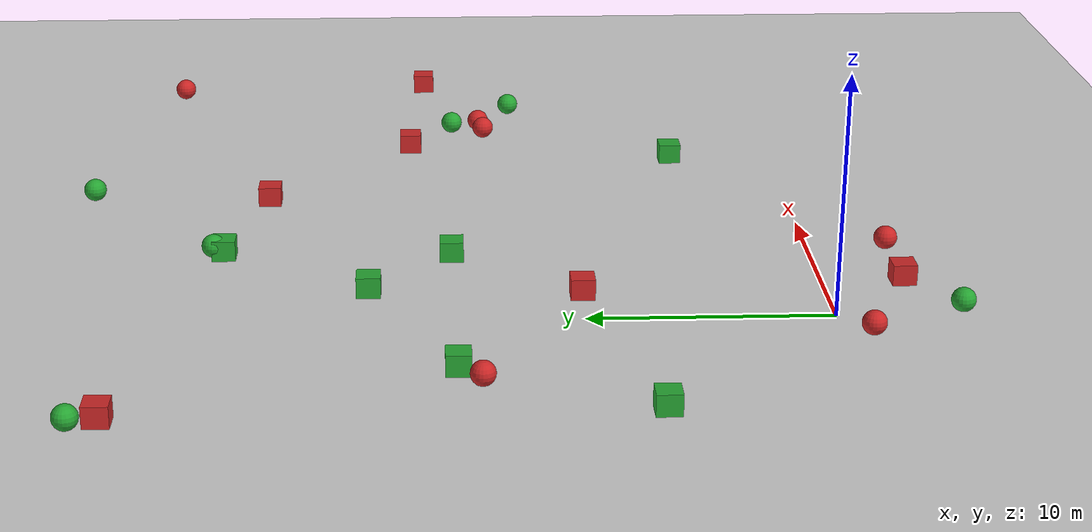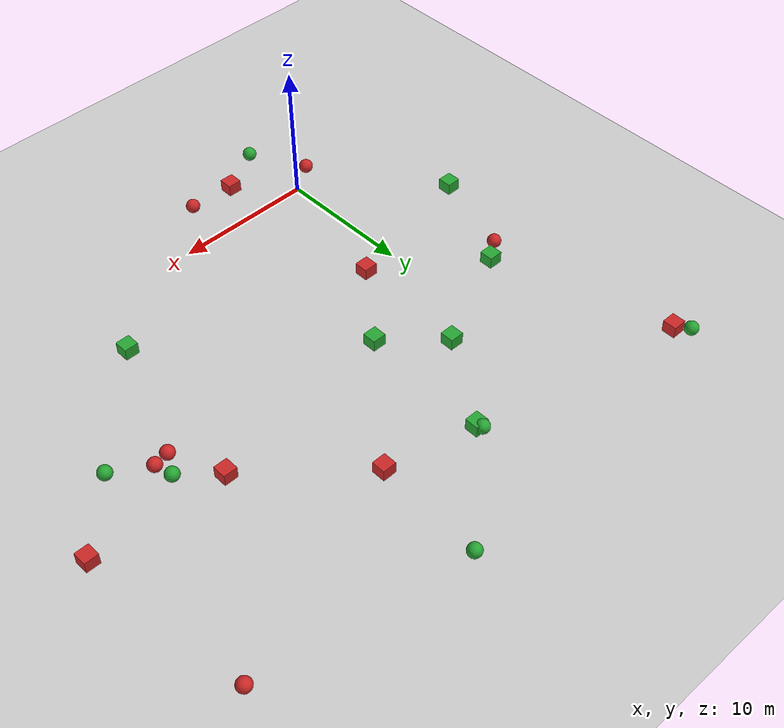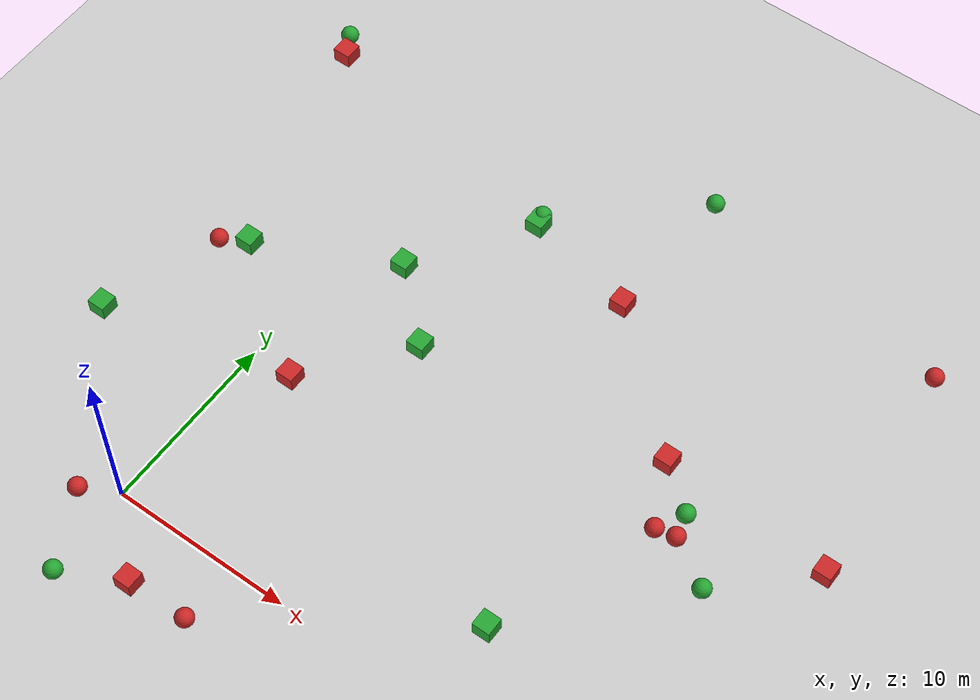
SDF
<sdf version="1.6">
 <world name="default">
  <light name="sun" type="directional">
   <pose>0 0 10 0 -0 0</pose>
   <diffuse>0.8 0.8 0.8 1</diffuse>
   <specular>0.1 0.1 0.1 1</specular>
   <attenuation>
    <range>1000</range>
    <constant>0.9</constant>
    <linear>0.01</linear>
    <quadratic>0.001</quadratic>
   </attenuation>
   <direction>-0.5 0.5 -1</direction>
  </light>
  <model name="ground_plane">
   <static>1</static>
   <link name="link">
    <collision name="collision">
     <geometry><plane><normal>0 0 1</normal><size>100 100</size></plane></geometry>
     <surface><friction><ode><mu>100</mu><mu2>50</mu2></ode></friction></surface>
    </collision>
    <visual name="visual">
     <cast_shadows>0</cast_shadows>
     <geometry><plane><normal>0 0 1</normal><size>100 100</size></plane></geometry>
     <material>
      <script><uri>file://media/materials/scripts/gazebo.material</uri><name>Gazebo/Grey</name></script>
     </material>
    </visual>
   </link>
  </model>
  <model name="unit_box_red_6">
   <pose>20.3543798488 17.0634728622 0.329741 0 -0 0</pose>
   <link name="link">
    <inertial>
     <mass>1</mass>
     <inertia>
      <ixx>0.166667</ixx>
      <ixy>0</ixy>
      <ixz>0</ixz>
      <iyy>0.166667</iyy>
      <iyz>0</iyz>
      <izz>0.166667</izz>
     </inertia>
    </inertial>
    <collision name="collision"><geometry><box><size>1 1 0.999999</size></box></geometry></collision>
    <visual name="visual">
     <geometry><box><size>1 1 0.999999</size></box></geometry>
     <material>
      <script><name>Gazebo/Red</name><uri>file://media/materials/scripts/gazebo.material</uri></script>
     </material>
    </visual>
   </link>
  </model>
  <model name="unit_box_red_5">
   <pose>-8.31629735371 27.9786632582 0.329741 0 -0 0</pose>
   <link name="link">
    <inertial>
     <mass>1</mass>
     <inertia>
      <ixx>0.166667</ixx>
      <ixy>0</ixy>
      <ixz>0</ixz>
      <iyy>0.166667</iyy>
      <iyz>0</iyz>
      <izz>0.166667</izz>
     </inertia>
    </inertial>
    <collision name="collision"><geometry><box><size>1 1 0.999999</size></box></geometry></collision>
    <visual name="visual">
     <geometry><box><size>1 1 0.999999</size></box></geometry>
     <material>
      <script><name>Gazebo/Red</name><uri>file://media/materials/scripts/gazebo.material</uri></script>
     </material>
    </visual>
   </link>
  </model>
  <model name="unit_box_red_4">
   <pose>13.3665794148 23.3492512222 0.329741 0 -0 0</pose>
   <link name="link">
    <inertial>
     <mass>1</mass>
     <inertia>
      <ixx>0.166667</ixx>
      <ixy>0</ixy>
      <ixz>0</ixz>
      <iyy>0.166667</iyy>
      <iyz>0</iyz>
      <izz>0.166667</izz>
     </inertia>
    </inertial>
    <collision name="collision"><geometry><box><size>1 1 0.999999</size></box></geometry></collision>
    <visual name="visual">
     <geometry><box><size>1 1 0.999999</size></box></geometry>
     <material>
      <script><name>Gazebo/Red</name><uri>file://media/materials/scripts/gazebo.material</uri></script>
     </material>
    </visual>
   </link>
  </model>
  <model name="unit_box_red_3">
   <pose>29.8086738754 16.46040214 0.329741 0 -0 0</pose>
   <link name="link">
    <inertial>
     <mass>1</mass>
     <inertia>
      <ixx>0.166667</ixx>
      <ixy>0</ixy>
      <ixz>0</ixz>
      <iyy>0.166667</iyy>
      <iyz>0</iyz>
      <izz>0.166667</izz>
     </inertia>
    </inertial>
    <collision name="collision"><geometry><box><size>1 1 0.999999</size></box></geometry></collision>
    <visual name="visual">
     <geometry><box><size>1 1 0.999999</size></box></geometry>
     <material>
      <script><name>Gazebo/Red</name><uri>file://media/materials/scripts/gazebo.material</uri></script>
     </material>
    </visual>
   </link>
  </model>
  <model name="unit_box_red_2">
   <pose>2.41471540165 9.9496012413 0.329741 0 -0 0</pose>
   <link name="link">
    <inertial>
     <mass>1</mass>
     <inertia>
      <ixx>0.166667</ixx>
      <ixy>0</ixy>
      <ixz>0</ixz>
      <iyy>0.166667</iyy>
      <iyz>0</iyz>
      <izz>0.166667</izz>
     </inertia>
    </inertial>
    <collision name="collision"><geometry><box><size>1 1 0.999999</size></box></geometry></collision>
    <visual name="visual">
     <geometry><box><size>1 1 0.999999</size></box></geometry>
     <material>
      <script><name>Gazebo/Red</name><uri>file://media/materials/scripts/gazebo.material</uri></script>
     </material>
    </visual>
   </link>
  </model>
  <model name="unit_box_red_1">
   <pose>3.49364411784 -3.36654053805 0.329741 0 -0 0</pose>
   <link name="link">
    <inertial>
     <mass>1</mass>
     <inertia>
      <ixx>0.166667</ixx>
      <ixy>0</ixy>
      <ixz>0</ixz>
      <iyy>0.166667</iyy>
      <iyz>0</iyz>
      <izz>0.166667</izz>
     </inertia>
    </inertial>
    <collision name="collision"><geometry><box><size>1 1 0.999999</size></box></geometry></collision>
    <visual name="visual">
     <geometry><box><size>1 1 0.999999</size></box></geometry>
     <material>
      <script><name>Gazebo/Red</name><uri>file://media/materials/scripts/gazebo.material</uri></script>
     </material>
    </visual>
   </link>
  </model>
  <model name="unit_sphere_red_6">
   <pose>28.5425557725 28.7944510873 0.5 0 -0 0</pose>
   <link name="link">
    <inertial>
     <mass>1</mass>
     <inertia><ixx>0.1</ixx><ixy>0</ixy><ixz>0</ixz><iyy>0.1</iyy><iyz>0</iyz><izz>0.1</izz></inertia>
    </inertial>
    <collision name="collision"><geometry><sphere><radius>0.5</radius></sphere></geometry></collision>
    <visual name="visual">
     <geometry><sphere><radius>0.5</radius></sphere></geometry>
     <material>
      <script><name>Gazebo/Red</name><uri>file://media/materials/scripts/gazebo.material</uri></script>
     </material>
    </visual>
   </link>
  </model>
  <model name="unit_sphere_red_5">
   <pose>23.0960167083 13.7533007402 0.5 0 -0 0</pose>
   <link name="link">
    <inertial>
     <mass>1</mass>
     <inertia><ixx>0.1</ixx><ixy>0</ixy><ixz>0</ixz><iyy>0.1</iyy><iyz>0</iyz><izz>0.1</izz></inertia>
    </inertial>
    <collision name="collision"><geometry><sphere><radius>0.5</radius></sphere></geometry></collision>
    <visual name="visual">
     <geometry><sphere><radius>0.5</radius></sphere></geometry>
     <material>
      <script><name>Gazebo/Red</name><uri>file://media/materials/scripts/gazebo.material</uri></script>
     </material>
    </visual>
   </link>
  </model>
  <model name="unit_sphere_red_4">
   <pose>21.9892381956 13.5327032004 0.5 0 -0 0</pose>
   <link name="link">
    <inertial>
     <mass>1</mass>
     <inertia><ixx>0.1</ixx><ixy>0</ixy><ixz>0</ixz><iyy>0.1</iyy><iyz>0</iyz><izz>0.1</izz></inertia>
    </inertial>
    <collision name="collision"><geometry><sphere><radius>0.5</radius></sphere></geometry></collision>
    <visual name="visual">
     <geometry><sphere><radius>0.5</radius></sphere></geometry>
     <material>
      <script><name>Gazebo/Red</name><uri>file://media/materials/scripts/gazebo.material</uri></script>
     </material>
    </visual>
   </link>
  </model>
  <model name="unit_sphere_red_3">
   <pose>-5.81113986409 14.1781815624 0.5 0 -0 0</pose>
   <link name="link">
    <inertial>
     <mass>1</mass>
     <inertia><ixx>0.1</ixx><ixy>0</ixy><ixz>0</ixz><iyy>0.1</iyy><iyz>0</iyz><izz>0.1</izz></inertia>
    </inertial>
    <collision name="collision"><geometry><sphere><radius>0.5</radius></sphere></geometry></collision>
    <visual name="visual">
     <geometry><sphere><radius>0.5</radius></sphere></geometry>
     <material>
      <script><name>Gazebo/Red</name><uri>file://media/materials/scripts/gazebo.material</uri></script>
     </material>
    </visual>
   </link>
  </model>
  <model name="unit_sphere_red_2">
   <pose>6.96467692216 -3.34521560669 0.5 0 -0 0</pose>
   <link name="link">
    <inertial>
     <mass>1</mass>
     <inertia><ixx>0.1</ixx><ixy>0</ixy><ixz>0</ixz><iyy>0.1</iyy><iyz>0</iyz><izz>0.1</izz></inertia>
    </inertial>
    <collision name="collision"><geometry><sphere><radius>0.5</radius></sphere></geometry></collision>
    <visual name="visual">
     <geometry><sphere><radius>0.5</radius></sphere></geometry>
     <material>
      <script><name>Gazebo/Red</name><uri>file://media/materials/scripts/gazebo.material</uri></script>
     </material>
    </visual>
   </link>
  </model>
  <model name="unit_sphere_red_1">
   <pose>-1.79047283174 -1.13138340202 0.5 0 -0 0</pose>
   <link name="link">
    <inertial>
     <mass>1</mass>
     <inertia><ixx>0.1</ixx><ixy>0</ixy><ixz>0</ixz><iyy>0.1</iyy><iyz>0</iyz><izz>0.1</izz></inertia>
    </inertial>
    <collision name="collision"><geometry><sphere><radius>0.5</radius></sphere></geometry></collision>
    <visual name="visual">
     <geometry><sphere><radius>0.5</radius></sphere></geometry>
     <material>
      <script><name>Gazebo/Red</name><uri>file://media/materials/scripts/gazebo.material</uri></script>
     </material>
    </visual>
   </link>
  </model>
  <model name="unit_box_green_6">
   <pose>6.99179960577 24.855295995 0.329741 0 -0 0</pose>
   <link name="link">
    <inertial>
     <mass>1</mass>
     <inertia>
      <ixx>0.166667</ixx>
      <ixy>0</ixy>
      <ixz>0</ixz>
      <iyy>0.166667</iyy>
      <iyz>0</iyz>
      <izz>0.166667</izz>
     </inertia>
    </inertial>
    <collision name="collision"><geometry><box><size>1 1 0.999999</size></box></geometry></collision>
    <visual name="visual">
     <geometry><box><size>1 1 0.999999</size></box></geometry>
     <material>
      <script><name>Gazebo/Green</name><uri>file://media/materials/scripts/gazebo.material</uri></script>
     </material>
    </visual>
   </link>
  </model>
  <model name="unit_box_green_5">
   <pose>-8.01150034338 7.57038260149 0.329741 0 -0 0</pose>
   <link name="link">
    <inertial>
     <mass>1</mass>
     <inertia>
      <ixx>0.166667</ixx>
      <ixy>0</ixy>
      <ixz>0</ixz>
      <iyy>0.166667</iyy>
      <iyz>0</iyz>
      <izz>0.166667</izz>
     </inertia>
    </inertial>
    <collision name="collision"><geometry><box><size>1 1 0.999999</size></box></geometry></collision>
    <visual name="visual">
     <geometry><box><size>1 1 0.999999</size></box></geometry>
     <material>
      <script><name>Gazebo/Green</name><uri>file://media/materials/scripts/gazebo.material</uri></script>
     </material>
    </visual>
   </link>
  </model>
  <model name="unit_box_green_4">
   <pose>6.56507069942 15.2206116318 0.329741 0 -0 0</pose>
   <link name="link">
    <inertial>
     <mass>1</mass>
     <inertia>
      <ixx>0.166667</ixx>
      <ixy>0</ixy>
      <ixz>0</ixz>
      <iyy>0.166667</iyy>
      <iyz>0</iyz>
      <izz>0.166667</izz>
     </inertia>
    </inertial>
    <collision name="collision"><geometry><box><size>1 1 0.999999</size></box></geometry></collision>
    <visual name="visual">
     <geometry><box><size>1 1 0.999999</size></box></geometry>
     <material>
      <script><name>Gazebo/Green</name><uri>file://media/materials/scripts/gazebo.material</uri></script>
     </material>
    </visual>
   </link>
  </model>
  <model name="unit_box_green_3">
   <pose>-4.52552615306 15.0727897711 0.329741 0 -0 0</pose>
   <link name="link">
    <inertial>
     <mass>1</mass>
     <inertia>
      <ixx>0.166667</ixx>
      <ixy>0</ixy>
      <ixz>0</ixz>
      <iyy>0.166667</iyy>
      <iyz>0</iyz>
      <izz>0.166667</izz>
     </inertia>
    </inertial>
    <collision name="collision"><geometry><box><size>1 1 0.999999</size></box></geometry></collision>
    <visual name="visual">
     <geometry><box><size>1 1 0.999999</size></box></geometry>
     <material>
      <script><name>Gazebo/Green</name><uri>file://media/materials/scripts/gazebo.material</uri></script>
     </material>
    </visual>
   </link>
  </model>
  <model name="unit_box_green_2">
   <pose>2.88540697368 18.6373316802 0.329741 0 -0 0</pose>
   <link name="link">
    <inertial>
     <mass>1</mass>
     <inertia>
      <ixx>0.166667</ixx>
      <ixy>0</ixy>
      <ixz>0</ixz>
      <iyy>0.166667</iyy>
      <iyz>0</iyz>
      <izz>0.166667</izz>
     </inertia>
    </inertial>
    <collision name="collision"><geometry><box><size>1 1 0.999999</size></box></geometry></collision>
    <visual name="visual">
     <geometry><box><size>1 1 0.999999</size></box></geometry>
     <material>
      <script><name>Gazebo/Green</name><uri>file://media/materials/scripts/gazebo.material</uri></script>
     </material>
    </visual>
   </link>
  </model>
  <model name="unit_box_green_1">
   <pose>18.5359439236 4.7105564809 0.329741 0 -0 0</pose>
   <link name="link">
    <inertial>
     <mass>1</mass>
     <inertia>
      <ixx>0.166667</ixx>
      <ixy>0</ixy>
      <ixz>0</ixz>
      <iyy>0.166667</iyy>
      <iyz>0</iyz>
      <izz>0.166667</izz>
     </inertia>
    </inertial>
    <collision name="collision"><geometry><box><size>1 1 0.999999</size></box></geometry></collision>
    <visual name="visual">
     <geometry><box><size>1 1 0.999999</size></box></geometry>
     <material>
      <script><name>Gazebo/Green</name><uri>file://media/materials/scripts/gazebo.material</uri></script>
     </material>
    </visual>
   </link>
  </model>
  <model name="unit_sphere_green_6">
   <pose>6.9289884829 25.3004916693 0.5 0 -0 0</pose>
   <link name="link">
    <inertial>
     <mass>1</mass>
     <inertia><ixx>0.1</ixx><ixy>0</ixy><ixz>0</ixz><iyy>0.1</iyy><iyz>0</iyz><izz>0.1</izz></inertia>
    </inertial>
    <collision name="collision"><geometry><sphere><radius>0.5</radius></sphere></geometry></collision>
    <visual name="visual">
     <geometry><sphere><radius>0.5</radius></sphere></geometry>
     <material>
      <script><name>Gazebo/Green</name><uri>file://media/materials/scripts/gazebo.material</uri></script>
     </material>
    </visual>
   </link>
  </model>
  <model name="unit_sphere_green_5">
   <pose>13.835067463 31.2976653655 0.5 0 -0 0</pose>
   <link name="link">
    <inertial>
     <mass>1</mass>
     <inertia><ixx>0.1</ixx><ixy>0</ixy><ixz>0</ixz><iyy>0.1</iyy><iyz>0</iyz><izz>0.1</izz></inertia>
    </inertial>
    <collision name="collision"><geometry><sphere><radius>0.5</radius></sphere></geometry></collision>
    <visual name="visual">
     <geometry><sphere><radius>0.5</radius></sphere></geometry>
     <material>
      <script><name>Gazebo/Green</name><uri>file://media/materials/scripts/gazebo.material</uri></script>
     </material>
    </visual>
   </link>
  </model>
  <model name="unit_sphere_green_4">
   <pose>0.296969006444 -5.1210146552 0.5 0 -0 0</pose>
   <link name="link">
    <inertial>
     <mass>1</mass>
     <inertia><ixx>0.1</ixx><ixy>0</ixy><ixz>0</ixz><iyy>0.1</iyy><iyz>0</iyz><izz>0.1</izz></inertia>
    </inertial>
    <collision name="collision"><geometry><sphere><radius>0.5</radius></sphere></geometry></collision>
    <visual name="visual">
     <geometry><sphere><radius>0.5</radius></sphere></geometry>
     <material>
      <script><name>Gazebo/Green</name><uri>file://media/materials/scripts/gazebo.material</uri></script>
     </material>
    </visual>
   </link>
  </model>
  <model name="unit_sphere_green_3">
   <pose>25.5946744479 12.1928207392 0.5 0 -0 0</pose>
   <link name="link">
    <inertial>
     <mass>1</mass>
     <inertia><ixx>0.1</ixx><ixy>0</ixy><ixz>0</ixz><iyy>0.1</iyy><iyz>0</iyz><izz>0.1</izz></inertia>
    </inertial>
    <collision name="collision"><geometry><sphere><radius>0.5</radius></sphere></geometry></collision>
    <visual name="visual">
     <geometry><sphere><radius>0.5</radius></sphere></geometry>
     <material>
      <script><name>Gazebo/Green</name><uri>file://media/materials/scripts/gazebo.material</uri></script>
     </material>
    </visual>
   </link>
  </model>
  <model name="unit_sphere_green_2">
   <pose>-8.90448275465 29.0008021297 0.5 0 -0 0</pose>
   <link name="link">
    <inertial>
     <mass>1</mass>
     <inertia><ixx>0.1</ixx><ixy>0</ixy><ixz>0</ixz><iyy>0.1</iyy><iyz>0</iyz><izz>0.1</izz></inertia>
    </inertial>
    <collision name="collision"><geometry><sphere><radius>0.5</radius></sphere></geometry></collision>
    <visual name="visual">
     <geometry><sphere><radius>0.5</radius></sphere></geometry>
     <material>
      <script><name>Gazebo/Green</name><uri>file://media/materials/scripts/gazebo.material</uri></script>
     </material>
    </visual>
   </link>
  </model>
  <model name="unit_sphere_green_1">
   <pose>22.7889866987 15.0521082961 0.5 0 -0 0</pose>
   <link name="link">
    <inertial>
     <mass>1</mass>
     <inertia><ixx>0.1</ixx><ixy>0</ixy><ixz>0</ixz><iyy>0.1</iyy><iyz>0</iyz><izz>0.1</izz></inertia>
    </inertial>
    <collision name="collision"><geometry><sphere><radius>0.5</radius></sphere></geometry></collision>
    <visual name="visual">
     <geometry><sphere><radius>0.5</radius></sphere></geometry>
     <material>
      <script><name>Gazebo/Green</name><uri>file://media/materials/scripts/gazebo.material</uri></script>
     </material>
    </visual>
   </link>
  </model>
  <gravity>0 0 -9.8</gravity>
  <magnetic_field>6e-06 2.3e-05 -4.2e-05</magnetic_field>
  <atmosphere type="adiabatic"/>
  <physics default="0" name="default_physics" type="ode">
   <max_step_size>0.001</max_step_size>
   <real_time_factor>1</real_time_factor>
   <real_time_update_rate>1000</real_time_update_rate>
  </physics>
  <scene><ambient>0.4 0.4 0.4 1</ambient><background>0.7 0.7 0.7 1</background><shadows>1</shadows></scene>
  <spherical_coordinates>
   <surface_model>EARTH_WGS84</surface_model>
   <latitude_deg>0</latitude_deg>
   <longitude_deg>0</longitude_deg>
   <elevation>0</elevation>
   <heading_deg>0</heading_deg>
  </spherical_coordinates>
 </world>
</sdf>
